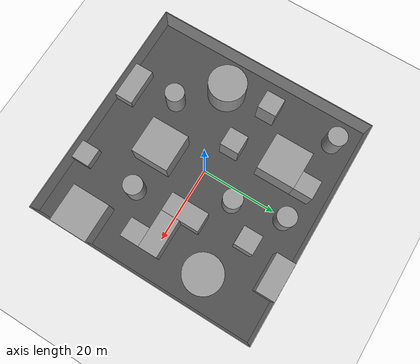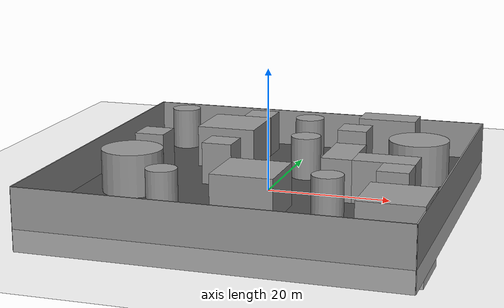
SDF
<sdf version="1.6">
 <world name="default">
  <light name="sun" type="directional">
   <pose>0 0 10 0 -0 0</pose>
   <diffuse>0.8 0.8 0.8 1</diffuse>
   <specular>0.2 0.2 0.2 1</specular>
   <attenuation>
    <range>1000</range>
    <constant>0.9</constant>
    <linear>0.01</linear>
    <quadratic>0.001</quadratic>
   </attenuation>
   <direction>-0.5 0.1 -0.9</direction>
  </light>
  <model name="ground_plane">
   <static>1</static>
   <link name="link">
    <collision name="collision">
     <geometry><plane><normal>0 0 1</normal><size>100 100</size></plane></geometry>
     <surface>
      <contact><collide_bitmask>65535</collide_bitmask></contact>
      <friction><ode><mu>100</mu><mu2>50</mu2></ode></friction>
     </surface>
    </collision>
    <visual name="visual">
     <cast_shadows>0</cast_shadows>
     <geometry><plane><normal>0 0 1</normal><size>100 100</size></plane></geometry>
     <material>
      <script><uri>file://media/materials/scripts/gazebo.material</uri><name>Gazebo/Grey</name></script>
     </material>
    </visual>
   </link>
  </model>
  <gravity>0 0 -9.8</gravity>
  <magnetic_field>6e-06 2.3e-05 -4.2e-05</magnetic_field>
  <atmosphere type="adiabatic"/>
  <physics name="default_physics" default="0" type="ode">
   <max_step_size>0.002</max_step_size>
   <real_time_factor>1</real_time_factor>
   <real_time_update_rate>500</real_time_update_rate>
  </physics>
  <scene><ambient>0.4 0.4 0.4 1</ambient><background>0.7 0.7 0.7 1</background><shadows>1</shadows></scene>
  <spherical_coordinates>
   <surface_model>EARTH_WGS84</surface_model>
   <latitude_deg>0</latitude_deg>
   <longitude_deg>0</longitude_deg>
   <elevation>0</elevation>
   <heading_deg>0</heading_deg>
  </spherical_coordinates>
  <model name="asphalt_plane">
   <static>1</static>
   <link name="link">
    <collision name="collision"><geometry><box><size>60 60 0.1</size></box></geometry></collision>
    <visual name="visual">
     <cast_shadows>0</cast_shadows>
     <geometry><box><size>60 60 0.1</size></box></geometry>
     <material>
      <script>
       <uri>model://asphalt_plane/materials/scripts</uri>
       <uri>model://asphalt_plane/materials/textures</uri>
       <name>vrc/asphalt</name>
      </script>
     </material>
    </visual>
   </link>
  </model>
  <model name="wall_north">
   <static>1</static>
   <link name="link">
    <pose>0 0 1.4 0 -0 0</pose>
    <collision name="collision"><geometry><box><size>60 0.2 10</size></box></geometry></collision>
    <visual name="visual">
     <cast_shadows>0</cast_shadows>
     <geometry><box><size>60 0.2 10</size></box></geometry>
     <material>
      <script>
       <uri>model://grey_wall/materials/scripts</uri>
       <uri>model://grey_wall/materials/textures</uri>
       <name>vrc/grey_wall</name>
      </script>
     </material>
    </visual>
   </link>
   <pose>0 30 0 0 -0 0</pose>
  </model>
  <model name="wall_south">
   <static>1</static>
   <link name="link">
    <pose>0 0 1.4 0 -0 0</pose>
    <collision name="collision"><geometry><box><size>60 0.2 10</size></box></geometry></collision>
    <visual name="visual">
     <cast_shadows>0</cast_shadows>
     <geometry><box><size>60 0.2 10</size></box></geometry>
     <material>
      <script>
       <uri>model://grey_wall/materials/scripts</uri>
       <uri>model://grey_wall/materials/textures</uri>
       <name>vrc/grey_wall</name>
      </script>
     </material>
    </visual>
   </link>
   <pose>0 -30 0 0 -0 0</pose>
  </model>
  <model name="wall_east">
   <static>1</static>
   <link name="link">
    <pose>0 0 1.4 0 -0 0</pose>
    <collision name="collision"><geometry><box><size>60 0.2 10</size></box></geometry></collision>
    <visual name="visual">
     <cast_shadows>0</cast_shadows>
     <geometry><box><size>60 0.2 10</size></box></geometry>
     <material>
      <script>
       <uri>model://grey_wall/materials/scripts</uri>
       <uri>model://grey_wall/materials/textures</uri>
       <name>vrc/grey_wall</name>
      </script>
     </material>
    </visual>
   </link>
   <pose>30 0 0 0 -0 1.5708</pose>
  </model>
  <model name="wall_west">
   <static>1</static>
   <link name="link">
    <pose>0 0 1.4 0 -0 0</pose>
    <collision name="collision"><geometry><box><size>60 0.2 10</size></box></geometry></collision>
    <visual name="visual">
     <cast_shadows>0</cast_shadows>
     <geometry><box><size>60 0.2 10</size></box></geometry>
     <material>
      <script>
       <uri>model://grey_wall/materials/scripts</uri>
       <uri>model://grey_wall/materials/textures</uri>
       <name>vrc/grey_wall</name>
      </script>
     </material>
    </visual>
   </link>
   <pose>-30 0 0 0 -0 1.5708</pose>
  </model>
  <model name="unit_box_clone_0_clone_clone">
   <pose>-11 16 1 0 2e-06 0</pose>
   <static>1</static>
   <link name="link">
    <inertial>
     <mass>1</mass>
     <inertia>
      <ixx>0.166667</ixx>
      <ixy>0</ixy>
      <ixz>0</ixz>
      <iyy>0.166667</iyy>
      <iyz>0</iyz>
      <izz>0.166667</izz>
     </inertia>
    </inertial>
    <collision name="collision"><geometry><box><size>10 10 12</size></box></geometry></collision>
    <visual name="visual">
     <geometry><box><size>10 10 12</size></box></geometry>
     <material>
      <script><name>Gazebo/Grey</name><uri>file://media/materials/scripts/gazebo.material</uri></script>
     </material>
    </visual>
   </link>
  </model>
  <model name="unit_box_clone_0_clone_clone_0">
   <pose>1 -12 1 0 2e-06 0</pose>
   <static>1</static>
   <link name="link">
    <inertial>
     <mass>1</mass>
     <inertia>
      <ixx>0.166667</ixx>
      <ixy>0</ixy>
      <ixz>0</ixz>
      <iyy>0.166667</iyy>
      <iyz>0</iyz>
      <izz>0.166667</izz>
     </inertia>
    </inertial>
    <collision name="collision"><geometry><box><size>10 10 12</size></box></geometry></collision>
    <visual name="visual">
     <geometry><box><size>10 10 12</size></box></geometry>
     <material>
      <script><name>Gazebo/Grey</name><uri>file://media/materials/scripts/gazebo.material</uri></script>
     </material>
    </visual>
   </link>
  </model>
  <model name="unit_cylinder_clone_clone_clone">
   <pose>22 13 1 0 -0 0</pose>
   <static>1</static>
   <link name="link">
    <inertial>
     <mass>1</mass>
     <inertia><ixx>0.145833</ixx><ixy>0</ixy><ixz>0</ixz><iyy>0.145833</iyy><iyz>0</iyz><izz>0.125</izz></inertia>
    </inertial>
    <collision name="collision">
     <geometry><cylinder><radius>5</radius><length>12</length></cylinder></geometry>
    </collision>
    <visual name="visual">
     <geometry><cylinder><radius>5</radius><length>12</length></cylinder></geometry>
     <material>
      <script><name>Gazebo/Grey</name><uri>file://media/materials/scripts/gazebo.material</uri></script>
     </material>
    </visual>
   </link>
  </model>
  <model name="unit_cylinder_clone_clone_clone_0">
   <pose>-21 -6 1 0 -0 0</pose>
   <static>1</static>
   <link name="link">
    <inertial>
     <mass>1</mass>
     <inertia><ixx>0.145833</ixx><ixy>0</ixy><ixz>0</ixz><iyy>0.145833</iyy><iyz>0</iyz><izz>0.125</izz></inertia>
    </inertial>
    <collision name="collision">
     <geometry><cylinder><radius>5</radius><length>12</length></cylinder></geometry>
    </collision>
    <visual name="visual">
     <geometry><cylinder><radius>5</radius><length>12</length></cylinder></geometry>
     <material>
      <script><name>Gazebo/Grey</name><uri>file://media/materials/scripts/gazebo.material</uri></script>
     </material>
    </visual>
   </link>
  </model>
  <model name="unit_box_clone_0_clone_clone_1">
   <pose>25 -19 1 0 2e-06 0</pose>
   <static>1</static>
   <link name="link">
    <inertial>
     <mass>1</mass>
     <inertia>
      <ixx>0.166667</ixx>
      <ixy>0</ixy>
      <ixz>0</ixz>
      <iyy>0.166667</iyy>
      <iyz>0</iyz>
      <izz>0.166667</izz>
     </inertia>
    </inertial>
    <collision name="collision"><geometry><box><size>10 10 12</size></box></geometry></collision>
    <visual name="visual">
     <geometry><box><size>10 10 12</size></box></geometry>
     <material>
      <script><name>Gazebo/Grey</name><uri>file://media/materials/scripts/gazebo.material</uri></script>
     </material>
    </visual>
   </link>
  </model>
  <model name="unit_box_clone_clone_clone">
   <pose>12 2 1 3e-06 -0 1.5708</pose>
   <static>1</static>
   <link name="link">
    <inertial>
     <mass>1</mass>
     <inertia>
      <ixx>0.166667</ixx>
      <ixy>0</ixy>
      <ixz>0</ixz>
      <iyy>0.166667</iyy>
      <iyz>0</iyz>
      <izz>0.166667</izz>
     </inertia>
    </inertial>
    <collision name="collision"><geometry><box><size>10 5 12</size></box></geometry></collision>
    <visual name="visual">
     <geometry><box><size>10 5 12</size></box></geometry>
     <material>
      <script><name>Gazebo/Grey</name><uri>file://media/materials/scripts/gazebo.material</uri></script>
     </material>
    </visual>
   </link>
  </model>
  <model name="unit_box_clone_clone_clone_0">
   <pose>-10 -27.5 1 0 2e-06 0</pose>
   <static>1</static>
   <link name="link">
    <inertial>
     <mass>1</mass>
     <inertia>
      <ixx>0.166667</ixx>
      <ixy>0</ixy>
      <ixz>0</ixz>
      <iyy>0.166667</iyy>
      <iyz>0</iyz>
      <izz>0.166667</izz>
     </inertia>
    </inertial>
    <collision name="collision"><geometry><box><size>10 5 4</size></box></geometry></collision>
    <visual name="visual">
     <geometry><box><size>10 5 4</size></box></geometry>
     <material>
      <script><name>Gazebo/Grey</name><uri>file://media/materials/scripts/gazebo.material</uri></script>
     </material>
    </visual>
   </link>
  </model>
  <model name="unit_box_clone_clone_clone_1">
   <pose>19.5 -0.5 1 0 -2e-06 -3.14159</pose>
   <static>1</static>
   <link name="link">
    <inertial>
     <mass>1</mass>
     <inertia>
      <ixx>0.166667</ixx>
      <ixy>0</ixy>
      <ixz>0</ixz>
      <iyy>0.166667</iyy>
      <iyz>0</iyz>
      <izz>0.166667</izz>
     </inertia>
    </inertial>
    <collision name="collision"><geometry><box><size>10 5 12</size></box></geometry></collision>
    <visual name="visual">
     <geometry><box><size>10 5 12</size></box></geometry>
     <material>
      <script><name>Gazebo/Grey</name><uri>file://media/materials/scripts/gazebo.material</uri></script>
     </material>
    </visual>
   </link>
  </model>
  <model name="unit_box_clone_1_clone">
   <pose>10 18 1 0 2e-06 0</pose>
   <static>1</static>
   <link name="link">
    <inertial>
     <mass>1</mass>
     <inertia>
      <ixx>0.166667</ixx>
      <ixy>0</ixy>
      <ixz>0</ixz>
      <iyy>0.166667</iyy>
      <iyz>0</iyz>
      <izz>0.166667</izz>
     </inertia>
    </inertial>
    <collision name="collision"><geometry><box><size>5 5 12</size></box></geometry></collision>
    <visual name="visual">
     <geometry><box><size>5 5 12</size></box></geometry>
     <material>
      <script><name>Gazebo/Grey</name><uri>file://media/materials/scripts/gazebo.material</uri></script>
     </material>
    </visual>
   </link>
  </model>
  <model name="unit_box_clone_1_clone_0">
   <pose>-22 6 1 0 2e-06 0</pose>
   <static>1</static>
   <link name="link">
    <inertial>
     <mass>1</mass>
     <inertia>
      <ixx>0.166667</ixx>
      <ixy>0</ixy>
      <ixz>0</ixz>
      <iyy>0.166667</iyy>
      <iyz>0</iyz>
      <izz>0.166667</izz>
     </inertia>
    </inertial>
    <collision name="collision"><geometry><box><size>5 5 12</size></box></geometry></collision>
    <visual name="visual">
     <geometry><box><size>5 5 12</size></box></geometry>
     <material>
      <script><name>Gazebo/Grey</name><uri>file://media/materials/scripts/gazebo.material</uri></script>
     </material>
    </visual>
   </link>
  </model>
  <model name="unit_box_clone_1_clone_1">
   <pose>12 -27.5 1 0 2e-06 0</pose>
   <static>1</static>
   <link name="link">
    <inertial>
     <mass>1</mass>
     <inertia>
      <ixx>0.166667</ixx>
      <ixy>0</ixy>
      <ixz>0</ixz>
      <iyy>0.166667</iyy>
      <iyz>0</iyz>
      <izz>0.166667</izz>
     </inertia>
    </inertial>
    <collision name="collision"><geometry><box><size>5 5 4</size></box></geometry></collision>
    <visual name="visual">
     <geometry><box><size>5 5 4</size></box></geometry>
     <material>
      <script><name>Gazebo/Grey</name><uri>file://media/materials/scripts/gazebo.material</uri></script>
     </material>
    </visual>
   </link>
  </model>
  <model name="unit_cylinder_clone_0_clone">
   <pose>0.586728 23 1 0 -0 0</pose>
   <static>1</static>
   <link name="link">
    <inertial>
     <mass>1</mass>
     <inertia><ixx>0.145833</ixx><ixy>0</ixy><ixz>0</ixz><iyy>0.145833</iyy><iyz>0</iyz><izz>0.125</izz></inertia>
    </inertial>
    <collision name="collision">
     <geometry><cylinder><radius>2.5</radius><length>12</length></cylinder></geometry>
    </collision>
    <visual name="visual">
     <geometry><cylinder><radius>2.5</radius><length>12</length></cylinder></geometry>
     <material>
      <script><name>Gazebo/Grey</name><uri>file://media/materials/scripts/gazebo.material</uri></script>
     </material>
    </visual>
   </link>
  </model>
  <model name="unit_cylinder_clone_0_clone_0">
   <pose>-12 -16 1 0 -0 0</pose>
   <static>1</static>
   <link name="link">
    <inertial>
     <mass>1</mass>
     <inertia><ixx>0.145833</ixx><ixy>0</ixy><ixz>0</ixz><iyy>0.145833</iyy><iyz>0</iyz><izz>0.125</izz></inertia>
    </inertial>
    <collision name="collision">
     <geometry><cylinder><radius>2.5</radius><length>12</length></cylinder></geometry>
    </collision>
    <visual name="visual">
     <geometry><cylinder><radius>2.5</radius><length>12</length></cylinder></geometry>
     <material>
      <script><name>Gazebo/Grey</name><uri>file://media/materials/scripts/gazebo.material</uri></script>
     </material>
    </visual>
   </link>
  </model>
  <model name="unit_cylinder_clone_0_clone_1">
   <pose>-23 24 1 0 -0 0</pose>
   <static>1</static>
   <link name="link">
    <inertial>
     <mass>1</mass>
     <inertia><ixx>0.145833</ixx><ixy>0</ixy><ixz>0</ixz><iyy>0.145833</iyy><iyz>0</iyz><izz>0.125</izz></inertia>
    </inertial>
    <collision name="collision">
     <geometry><cylinder><radius>2.5</radius><length>12</length></cylinder></geometry>
    </collision>
    <visual name="visual">
     <geometry><cylinder><radius>2.5</radius><length>12</length></cylinder></geometry>
     <material>
      <script><name>Gazebo/Grey</name><uri>file://media/materials/scripts/gazebo.material</uri></script>
     </material>
    </visual>
   </link>
  </model>
  <model name="unit_box_clone_1_clone_2">
   <pose>22 -5.5 1 0 2e-06 0</pose>
   <static>1</static>
   <link name="link">
    <inertial>
     <mass>1</mass>
     <inertia>
      <ixx>0.166667</ixx>
      <ixy>0</ixy>
      <ixz>0</ixz>
      <iyy>0.166667</iyy>
      <iyz>0</iyz>
      <izz>0.166667</izz>
     </inertia>
    </inertial>
    <collision name="collision"><geometry><box><size>5 5 12</size></box></geometry></collision>
    <visual name="visual">
     <geometry><box><size>5 5 12</size></box></geometry>
     <material>
      <script><name>Gazebo/Grey</name><uri>file://media/materials/scripts/gazebo.material</uri></script>
     </material>
    </visual>
   </link>
  </model>
  <model name="unit_box_clone_1_clone_3">
   <pose>-8.5 23.5 1 0 2e-06 0</pose>
   <static>1</static>
   <link name="link">
    <inertial>
     <mass>1</mass>
     <inertia>
      <ixx>0.166667</ixx>
      <ixy>0</ixy>
      <ixz>0</ixz>
      <iyy>0.166667</iyy>
      <iyz>0</iyz>
      <izz>0.166667</izz>
     </inertia>
    </inertial>
    <collision name="collision"><geometry><box><size>5 5 12</size></box></geometry></collision>
    <visual name="visual">
     <geometry><box><size>5 5 12</size></box></geometry>
     <material>
      <script><name>Gazebo/Grey</name><uri>file://media/materials/scripts/gazebo.material</uri></script>
     </material>
    </visual>
   </link>
  </model>
  <model name="unit_cylinder_clone_0_clone_2">
   <pose>13 -12 1 0 -0 0</pose>
   <static>1</static>
   <link name="link">
    <inertial>
     <mass>1</mass>
     <inertia><ixx>0.145833</ixx><ixy>0</ixy><ixz>0</ixz><iyy>0.145833</iyy><iyz>0</iyz><izz>0.125</izz></inertia>
    </inertial>
    <collision name="collision">
     <geometry><cylinder><radius>2.5</radius><length>12</length></cylinder></geometry>
    </collision>
    <visual name="visual">
     <geometry><cylinder><radius>2.5</radius><length>12</length></cylinder></geometry>
     <material>
      <script><name>Gazebo/Grey</name><uri>file://media/materials/scripts/gazebo.material</uri></script>
     </material>
    </visual>
   </link>
  </model>
  <model name="unit_box_clone_1_clone_4">
   <pose>-9 3 1 0 2e-06 0</pose>
   <static>1</static>
   <link name="link">
    <inertial>
     <mass>1</mass>
     <inertia>
      <ixx>0.166667</ixx>
      <ixy>0</ixy>
      <ixz>0</ixz>
      <iyy>0.166667</iyy>
      <iyz>0</iyz>
      <izz>0.166667</izz>
     </inertia>
    </inertial>
    <collision name="collision"><geometry><box><size>5 5 12</size></box></geometry></collision>
    <visual name="visual">
     <geometry><box><size>5 5 12</size></box></geometry>
     <material>
      <script><name>Gazebo/Grey</name><uri>file://media/materials/scripts/gazebo.material</uri></script>
     </material>
    </visual>
   </link>
  </model>
  <model name="unit_box_clone_clone_clone_2">
   <pose>14 27.5 1 0 2e-06 0</pose>
   <static>1</static>
   <link name="link">
    <inertial>
     <mass>1</mass>
     <inertia>
      <ixx>0.166667</ixx>
      <ixy>0</ixy>
      <ixz>0</ixz>
      <iyy>0.166667</iyy>
      <iyz>0</iyz>
      <izz>0.166667</izz>
     </inertia>
    </inertial>
    <collision name="collision"><geometry><box><size>10 5 12</size></box></geometry></collision>
    <visual name="visual">
     <geometry><box><size>10 5 12</size></box></geometry>
     <material>
      <script><name>Gazebo/Grey</name><uri>file://media/materials/scripts/gazebo.material</uri></script>
     </material>
    </visual>
   </link>
  </model>
  <model name="unit_cylinder_clone_0_clone_3">
   <pose>3.50072 10 1 0 -0 0</pose>
   <static>1</static>
   <link name="link">
    <inertial>
     <mass>1</mass>
     <inertia><ixx>0.145833</ixx><ixy>0</ixy><ixz>0</ixz><iyy>0.145833</iyy><iyz>0</iyz><izz>0.125</izz></inertia>
    </inertial>
    <collision name="collision">
     <geometry><cylinder><radius>2.5</radius><length>12</length></cylinder></geometry>
    </collision>
    <visual name="visual">
     <geometry><cylinder><radius>2.5</radius><length>12</length></cylinder></geometry>
     <material>
      <script><name>Gazebo/Grey</name><uri>file://media/materials/scripts/gazebo.material</uri></script>
     </material>
    </visual>
   </link>
  </model>
 </world>
</sdf>
